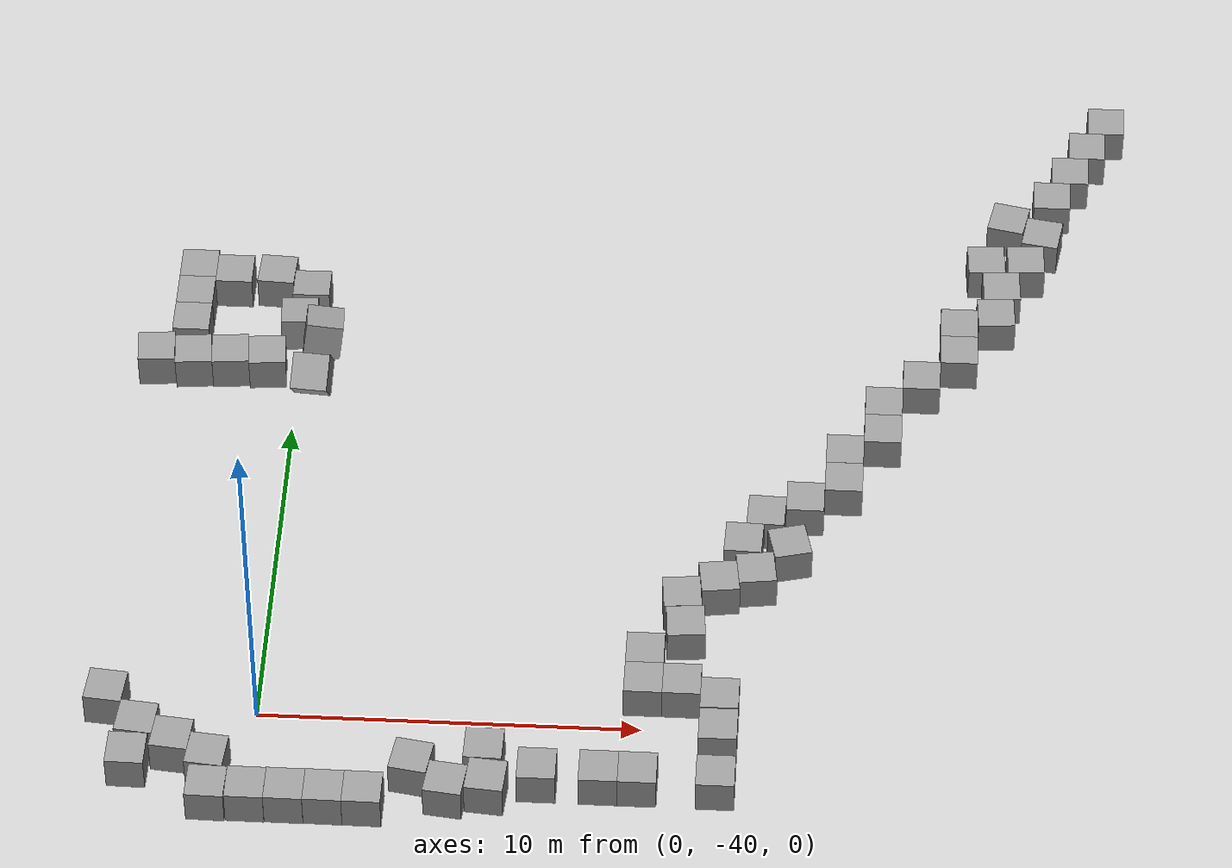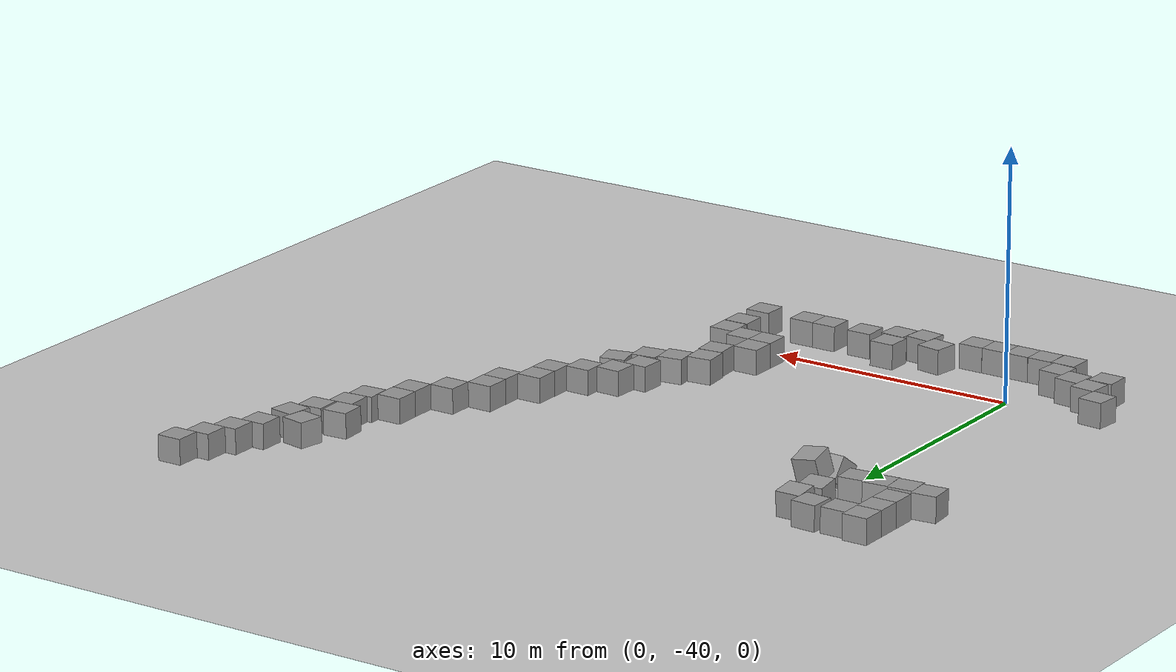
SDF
<sdf version="1.7">
 <world name="default">
  <model name="ground_plane">
   <static>1</static>
   <link name="link">
    <collision name="collision">
     <geometry><plane><normal>0 0 1</normal><size>100 100</size></plane></geometry>
     <surface>
      <contact><collide_bitmask>65535</collide_bitmask></contact>
      <friction><ode><mu>100</mu><mu2>50</mu2></ode></friction>
     </surface>
    </collision>
    <visual name="visual">
     <cast_shadows>0</cast_shadows>
     <geometry><plane><normal>0 0 1</normal><size>100 100</size></plane></geometry>
     <material>
      <script><uri>file://media/materials/scripts/gazebo.material</uri><name>Gazebo/Grey</name></script>
     </material>
    </visual>
   </link>
  </model>
  <model name="unit_box_clone_72">
   <pose>21.4729 -19 0.5 -0 -0 -9e-06</pose>
   <link name="link">
    <inertial>
     <mass>1</mass>
     <inertia>
      <ixx>0.166667</ixx>
      <ixy>0</ixy>
      <ixz>0</ixz>
      <iyy>0.166667</iyy>
      <iyz>0</iyz>
      <izz>0.166667</izz>
     </inertia>
    </inertial>
    <collision name="collision"><geometry><box><size>1 1 1</size></box></geometry></collision>
    <visual name="visual">
     <geometry><box><size>1 1 1</size></box></geometry>
     <material>
      <script><name>Gazebo/Grey</name><uri>file://media/materials/scripts/gazebo.material</uri></script>
     </material>
    </visual>
   </link>
  </model>
  <model name="unit_box_clone_73">
   <pose>21 -20 0.5 0 -0 1e-05</pose>
   <link name="link">
    <inertial>
     <mass>1</mass>
     <inertia>
      <ixx>0.166667</ixx>
      <ixy>0</ixy>
      <ixz>0</ixz>
      <iyy>0.166667</iyy>
      <iyz>0</iyz>
      <izz>0.166667</izz>
     </inertia>
    </inertial>
    <collision name="collision"><geometry><box><size>1 1 1</size></box></geometry></collision>
    <visual name="visual">
     <geometry><box><size>1 1 1</size></box></geometry>
     <material>
      <script><name>Gazebo/Grey</name><uri>file://media/materials/scripts/gazebo.material</uri></script>
     </material>
    </visual>
   </link>
  </model>
  <model name="unit_box_clone_74">
   <pose>22 -18 0.5 0 -0 -1e-06</pose>
   <link name="link">
    <inertial>
     <mass>1</mass>
     <inertia>
      <ixx>0.166667</ixx>
      <ixy>0</ixy>
      <ixz>0</ixz>
      <iyy>0.166667</iyy>
      <iyz>0</iyz>
      <izz>0.166667</izz>
     </inertia>
    </inertial>
    <collision name="collision"><geometry><box><size>1 1 1</size></box></geometry></collision>
    <visual name="visual">
     <geometry><box><size>1 1 1</size></box></geometry>
     <material>
      <script><name>Gazebo/Grey</name><uri>file://media/materials/scripts/gazebo.material</uri></script>
     </material>
    </visual>
   </link>
  </model>
  <model name="unit_box_clone_75">
   <pose>19.2987 -21.9461 0.5 0 0 -0.202812</pose>
   <link name="link">
    <inertial>
     <mass>1</mass>
     <inertia>
      <ixx>0.166667</ixx>
      <ixy>0</ixy>
      <ixz>0</ixz>
      <iyy>0.166667</iyy>
      <iyz>0</iyz>
      <izz>0.166667</izz>
     </inertia>
    </inertial>
    <collision name="collision"><geometry><box><size>1 1 1</size></box></geometry></collision>
    <visual name="visual">
     <geometry><box><size>1 1 1</size></box></geometry>
     <material>
      <script><name>Gazebo/Grey</name><uri>file://media/materials/scripts/gazebo.material</uri></script>
     </material>
    </visual>
   </link>
  </model>
  <model name="unit_box_clone_76">
   <pose>20.4952 -21 0.5 0 -0 2.5e-05</pose>
   <link name="link">
    <inertial>
     <mass>1</mass>
     <inertia>
      <ixx>0.166667</ixx>
      <ixy>0</ixy>
      <ixz>0</ixz>
      <iyy>0.166667</iyy>
      <iyz>0</iyz>
      <izz>0.166667</izz>
     </inertia>
    </inertial>
    <collision name="collision"><geometry><box><size>1 1 1</size></box></geometry></collision>
    <visual name="visual">
     <geometry><box><size>1 1 1</size></box></geometry>
     <material>
      <script><name>Gazebo/Grey</name><uri>file://media/materials/scripts/gazebo.material</uri></script>
     </material>
    </visual>
   </link>
  </model>
  <model name="unit_box_clone_77">
   <pose>20.2343 -22.4684 0.499995 0 -1e-05 -0.160719</pose>
   <link name="link">
    <inertial>
     <mass>1</mass>
     <inertia>
      <ixx>0.166667</ixx>
      <ixy>0</ixy>
      <ixz>0</ixz>
      <iyy>0.166667</iyy>
      <iyz>0</iyz>
      <izz>0.166667</izz>
     </inertia>
    </inertial>
    <collision name="collision"><geometry><box><size>1 1 1</size></box></geometry></collision>
    <visual name="visual">
     <geometry><box><size>1 1 1</size></box></geometry>
     <material>
      <script><name>Gazebo/Grey</name><uri>file://media/materials/scripts/gazebo.material</uri></script>
     </material>
    </visual>
   </link>
  </model>
  <model name="unit_box_clone_78">
   <pose>19.7832 -23.5026 0.499995 0 1e-05 0.048794</pose>
   <link name="link">
    <inertial>
     <mass>1</mass>
     <inertia>
      <ixx>0.166667</ixx>
      <ixy>0</ixy>
      <ixz>0</ixz>
      <iyy>0.166667</iyy>
      <iyz>0</iyz>
      <izz>0.166667</izz>
     </inertia>
    </inertial>
    <collision name="collision"><geometry><box><size>1 1 1</size></box></geometry></collision>
    <visual name="visual">
     <geometry><box><size>1 1 1</size></box></geometry>
     <material>
      <script><name>Gazebo/Grey</name><uri>file://media/materials/scripts/gazebo.material</uri></script>
     </material>
    </visual>
   </link>
  </model>
  <model name="unit_box_clone_79">
   <pose>18.6934 -23.5639 0.5 0 -0 0.058094</pose>
   <link name="link">
    <inertial>
     <mass>1</mass>
     <inertia>
      <ixx>0.166667</ixx>
      <ixy>0</ixy>
      <ixz>0</ixz>
      <iyy>0.166667</iyy>
      <iyz>0</iyz>
      <izz>0.166667</izz>
     </inertia>
    </inertial>
    <collision name="collision"><geometry><box><size>1 1 1</size></box></geometry></collision>
    <visual name="visual">
     <geometry><box><size>1 1 1</size></box></geometry>
     <material>
      <script><name>Gazebo/Grey</name><uri>file://media/materials/scripts/gazebo.material</uri></script>
     </material>
    </visual>
   </link>
  </model>
  <model name="unit_box_clone_80">
   <pose>19.1256 -24.5424 0.499995 0 1e-05 0.060179</pose>
   <link name="link">
    <inertial>
     <mass>1</mass>
     <inertia>
      <ixx>0.166667</ixx>
      <ixy>0</ixy>
      <ixz>0</ixz>
      <iyy>0.166667</iyy>
      <iyz>0</iyz>
      <izz>0.166667</izz>
     </inertia>
    </inertial>
    <collision name="collision"><geometry><box><size>1 1 1</size></box></geometry></collision>
    <visual name="visual">
     <geometry><box><size>1 1 1</size></box></geometry>
     <material>
      <script><name>Gazebo/Grey</name><uri>file://media/materials/scripts/gazebo.material</uri></script>
     </material>
    </visual>
   </link>
  </model>
  <model name="unit_box_clone_81">
   <pose>17.9863 -26.003 0.5 0 -0 0.004914</pose>
   <link name="link">
    <inertial>
     <mass>1</mass>
     <inertia>
      <ixx>0.166667</ixx>
      <ixy>0</ixy>
      <ixz>0</ixz>
      <iyy>0.166667</iyy>
      <iyz>0</iyz>
      <izz>0.166667</izz>
     </inertia>
    </inertial>
    <collision name="collision"><geometry><box><size>1 1 1</size></box></geometry></collision>
    <visual name="visual">
     <geometry><box><size>1 1 1</size></box></geometry>
     <material>
      <script><name>Gazebo/Grey</name><uri>file://media/materials/scripts/gazebo.material</uri></script>
     </material>
    </visual>
   </link>
  </model>
  <model name="unit_box_clone_82">
   <pose>18 -27.0032 0.5 0 -0 0.004405</pose>
   <link name="link">
    <inertial>
     <mass>1</mass>
     <inertia>
      <ixx>0.166667</ixx>
      <ixy>0</ixy>
      <ixz>0</ixz>
      <iyy>0.166667</iyy>
      <iyz>0</iyz>
      <izz>0.166667</izz>
     </inertia>
    </inertial>
    <collision name="collision"><geometry><box><size>1 1 1</size></box></geometry></collision>
    <visual name="visual">
     <geometry><box><size>1 1 1</size></box></geometry>
     <material>
      <script><name>Gazebo/Grey</name><uri>file://media/materials/scripts/gazebo.material</uri></script>
     </material>
    </visual>
   </link>
  </model>
  <model name="unit_box_clone_83">
   <pose>17 -28 0.5 0 -0 -3e-06</pose>
   <link name="link">
    <inertial>
     <mass>1</mass>
     <inertia>
      <ixx>0.166667</ixx>
      <ixy>0</ixy>
      <ixz>0</ixz>
      <iyy>0.166667</iyy>
      <iyz>0</iyz>
      <izz>0.166667</izz>
     </inertia>
    </inertial>
    <collision name="collision"><geometry><box><size>1 1 1</size></box></geometry></collision>
    <visual name="visual">
     <geometry><box><size>1 1 1</size></box></geometry>
     <material>
      <script><name>Gazebo/Grey</name><uri>file://media/materials/scripts/gazebo.material</uri></script>
     </material>
    </visual>
   </link>
  </model>
  <model name="unit_box_clone_84">
   <pose>18.9879 -25.5529 0.499995 -1e-05 -0 0.059931</pose>
   <link name="link">
    <inertial>
     <mass>1</mass>
     <inertia>
      <ixx>0.166667</ixx>
      <ixy>0</ixy>
      <ixz>0</ixz>
      <iyy>0.166667</iyy>
      <iyz>0</iyz>
      <izz>0.166667</izz>
     </inertia>
    </inertial>
    <collision name="collision"><geometry><box><size>1 1 1</size></box></geometry></collision>
    <visual name="visual">
     <geometry><box><size>1 1 1</size></box></geometry>
     <material>
      <script><name>Gazebo/Grey</name><uri>file://media/materials/scripts/gazebo.material</uri></script>
     </material>
    </visual>
   </link>
  </model>
  <model name="unit_box_clone_85">
   <pose>16 -29 0.5 0 -0 0</pose>
   <link name="link">
    <inertial>
     <mass>1</mass>
     <inertia>
      <ixx>0.166667</ixx>
      <ixy>0</ixy>
      <ixz>0</ixz>
      <iyy>0.166667</iyy>
      <iyz>0</iyz>
      <izz>0.166667</izz>
     </inertia>
    </inertial>
    <collision name="collision"><geometry><box><size>1 1 1</size></box></geometry></collision>
    <visual name="visual">
     <geometry><box><size>1 1 1</size></box></geometry>
     <material>
      <script><name>Gazebo/Grey</name><uri>file://media/materials/scripts/gazebo.material</uri></script>
     </material>
    </visual>
   </link>
  </model>
  <model name="unit_box_clone_86">
   <pose>16 -30 0.5 0 0 -2e-06</pose>
   <link name="link">
    <inertial>
     <mass>1</mass>
     <inertia>
      <ixx>0.166667</ixx>
      <ixy>0</ixy>
      <ixz>0</ixz>
      <iyy>0.166667</iyy>
      <iyz>0</iyz>
      <izz>0.166667</izz>
     </inertia>
    </inertial>
    <collision name="collision"><geometry><box><size>1 1 1</size></box></geometry></collision>
    <visual name="visual">
     <geometry><box><size>1 1 1</size></box></geometry>
     <material>
      <script><name>Gazebo/Grey</name><uri>file://media/materials/scripts/gazebo.material</uri></script>
     </material>
    </visual>
   </link>
  </model>
  <model name="unit_box_clone_87">
   <pose>14.9996 -31.7918 0.5 0 -0 0.000725</pose>
   <link name="link">
    <inertial>
     <mass>1</mass>
     <inertia>
      <ixx>0.166667</ixx>
      <ixy>0</ixy>
      <ixz>0</ixz>
      <iyy>0.166667</iyy>
      <iyz>0</iyz>
      <izz>0.166667</izz>
     </inertia>
    </inertial>
    <collision name="collision"><geometry><box><size>1 1 1</size></box></geometry></collision>
    <visual name="visual">
     <geometry><box><size>1 1 1</size></box></geometry>
     <material>
      <script><name>Gazebo/Grey</name><uri>file://media/materials/scripts/gazebo.material</uri></script>
     </material>
    </visual>
   </link>
  </model>
  <model name="unit_box_clone_88">
   <pose>13.9969 -32.5442 0.5 0 0 -0.004315</pose>
   <link name="link">
    <inertial>
     <mass>1</mass>
     <inertia>
      <ixx>0.166667</ixx>
      <ixy>0</ixy>
      <ixz>0</ixz>
      <iyy>0.166667</iyy>
      <iyz>0</iyz>
      <izz>0.166667</izz>
     </inertia>
    </inertial>
    <collision name="collision"><geometry><box><size>1 1 1</size></box></geometry></collision>
    <visual name="visual">
     <geometry><box><size>1 1 1</size></box></geometry>
     <material>
      <script><name>Gazebo/Grey</name><uri>file://media/materials/scripts/gazebo.material</uri></script>
     </material>
    </visual>
   </link>
  </model>
  <model name="unit_box_clone_89">
   <pose>15 -30.7915 0.5 0 -0 0.000207</pose>
   <link name="link">
    <inertial>
     <mass>1</mass>
     <inertia>
      <ixx>0.166667</ixx>
      <ixy>0</ixy>
      <ixz>0</ixz>
      <iyy>0.166667</iyy>
      <iyz>0</iyz>
      <izz>0.166667</izz>
     </inertia>
    </inertial>
    <collision name="collision"><geometry><box><size>1 1 1</size></box></geometry></collision>
    <visual name="visual">
     <geometry><box><size>1 1 1</size></box></geometry>
     <material>
      <script><name>Gazebo/Grey</name><uri>file://media/materials/scripts/gazebo.material</uri></script>
     </material>
    </visual>
   </link>
  </model>
  <model name="unit_box_clone_90">
   <pose>12.7797 -35.104 0.5 0 -0 0.128414</pose>
   <link name="link">
    <inertial>
     <mass>1</mass>
     <inertia>
      <ixx>0.166667</ixx>
      <ixy>0</ixy>
      <ixz>0</ixz>
      <iyy>0.166667</iyy>
      <iyz>0</iyz>
      <izz>0.166667</izz>
     </inertia>
    </inertial>
    <collision name="collision"><geometry><box><size>1 1 1</size></box></geometry></collision>
    <visual name="visual">
     <geometry><box><size>1 1 1</size></box></geometry>
     <material>
      <script><name>Gazebo/Grey</name><uri>file://media/materials/scripts/gazebo.material</uri></script>
     </material>
    </visual>
   </link>
  </model>
  <model name="unit_box_clone_91">
   <pose>12.41 -34.0658 0.5 0 0 -0.03862</pose>
   <link name="link">
    <inertial>
     <mass>1</mass>
     <inertia>
      <ixx>0.166667</ixx>
      <ixy>0</ixy>
      <ixz>0</ixz>
      <iyy>0.166667</iyy>
      <iyz>0</iyz>
      <izz>0.166667</izz>
     </inertia>
    </inertial>
    <collision name="collision"><geometry><box><size>1 1 1</size></box></geometry></collision>
    <visual name="visual">
     <geometry><box><size>1 1 1</size></box></geometry>
     <material>
      <script><name>Gazebo/Grey</name><uri>file://media/materials/scripts/gazebo.material</uri></script>
     </material>
    </visual>
   </link>
  </model>
  <model name="unit_box_clone_92">
   <pose>13.6292 -34.1431 0.5 0 -0 0.237766</pose>
   <link name="link">
    <inertial>
     <mass>1</mass>
     <inertia>
      <ixx>0.166667</ixx>
      <ixy>0</ixy>
      <ixz>0</ixz>
      <iyy>0.166667</iyy>
      <iyz>0</iyz>
      <izz>0.166667</izz>
     </inertia>
    </inertial>
    <collision name="collision"><geometry><box><size>1 1 1</size></box></geometry></collision>
    <visual name="visual">
     <geometry><box><size>1 1 1</size></box></geometry>
     <material>
      <script><name>Gazebo/Grey</name><uri>file://media/materials/scripts/gazebo.material</uri></script>
     </material>
    </visual>
   </link>
  </model>
  <model name="unit_box_clone_93">
   <pose>12.9775 -33.0869 0.5 0 0 -0.03902</pose>
   <link name="link">
    <inertial>
     <mass>1</mass>
     <inertia>
      <ixx>0.166667</ixx>
      <ixy>0</ixy>
      <ixz>0</ixz>
      <iyy>0.166667</iyy>
      <iyz>0</iyz>
      <izz>0.166667</izz>
     </inertia>
    </inertial>
    <collision name="collision"><geometry><box><size>1 1 1</size></box></geometry></collision>
    <visual name="visual">
     <geometry><box><size>1 1 1</size></box></geometry>
     <material>
      <script><name>Gazebo/Grey</name><uri>file://media/materials/scripts/gazebo.material</uri></script>
     </material>
    </visual>
   </link>
  </model>
  <model name="unit_box_clone_94">
   <pose>11.0055 -37.0322 0.5 0 -0 0.07946</pose>
   <link name="link">
    <inertial>
     <mass>1</mass>
     <inertia>
      <ixx>0.166667</ixx>
      <ixy>0</ixy>
      <ixz>0</ixz>
      <iyy>0.166667</iyy>
      <iyz>0</iyz>
      <izz>0.166667</izz>
     </inertia>
    </inertial>
    <collision name="collision"><geometry><box><size>1 1 1</size></box></geometry></collision>
    <visual name="visual">
     <geometry><box><size>1 1 1</size></box></geometry>
     <material>
      <script><name>Gazebo/Grey</name><uri>file://media/materials/scripts/gazebo.material</uri></script>
     </material>
    </visual>
   </link>
  </model>
  <model name="unit_box_clone_95">
   <pose>11.8162 -35.451 0.499995 -1e-05 -0 0.128412</pose>
   <link name="link">
    <inertial>
     <mass>1</mass>
     <inertia>
      <ixx>0.166667</ixx>
      <ixy>0</ixy>
      <ixz>0</ixz>
      <iyy>0.166667</iyy>
      <iyz>0</iyz>
      <izz>0.166667</izz>
     </inertia>
    </inertial>
    <collision name="collision"><geometry><box><size>1 1 1</size></box></geometry></collision>
    <visual name="visual">
     <geometry><box><size>1 1 1</size></box></geometry>
     <material>
      <script><name>Gazebo/Grey</name><uri>file://media/materials/scripts/gazebo.material</uri></script>
     </material>
    </visual>
   </link>
  </model>
  <model name="unit_box_clone_96">
   <pose>10.8645 -36.0344 0.5 0 -0 0.092572</pose>
   <link name="link">
    <inertial>
     <mass>1</mass>
     <inertia>
      <ixx>0.166667</ixx>
      <ixy>0</ixy>
      <ixz>0</ixz>
      <iyy>0.166667</iyy>
      <iyz>0</iyz>
      <izz>0.166667</izz>
     </inertia>
    </inertial>
    <collision name="collision"><geometry><box><size>1 1 1</size></box></geometry></collision>
    <visual name="visual">
     <geometry><box><size>1 1 1</size></box></geometry>
     <material>
      <script><name>Gazebo/Grey</name><uri>file://media/materials/scripts/gazebo.material</uri></script>
     </material>
    </visual>
   </link>
  </model>
  <model name="unit_box_clone_97">
   <pose>10 -38 0.5 0 -0 2e-06</pose>
   <link name="link">
    <inertial>
     <mass>1</mass>
     <inertia>
      <ixx>0.166667</ixx>
      <ixy>0</ixy>
      <ixz>0</ixz>
      <iyy>0.166667</iyy>
      <iyz>0</iyz>
      <izz>0.166667</izz>
     </inertia>
    </inertial>
    <collision name="collision"><geometry><box><size>1 1 1</size></box></geometry></collision>
    <visual name="visual">
     <geometry><box><size>1 1 1</size></box></geometry>
     <material>
      <script><name>Gazebo/Grey</name><uri>file://media/materials/scripts/gazebo.material</uri></script>
     </material>
    </visual>
   </link>
  </model>
  <model name="unit_box_clone_98">
   <pose>10 -39 0.499995 0 1e-05 -5e-06</pose>
   <link name="link">
    <inertial>
     <mass>1</mass>
     <inertia>
      <ixx>0.166667</ixx>
      <ixy>0</ixy>
      <ixz>0</ixz>
      <iyy>0.166667</iyy>
      <iyz>0</iyz>
      <izz>0.166667</izz>
     </inertia>
    </inertial>
    <collision name="collision"><geometry><box><size>1 1 1</size></box></geometry></collision>
    <visual name="visual">
     <geometry><box><size>1 1 1</size></box></geometry>
     <material>
      <script><name>Gazebo/Grey</name><uri>file://media/materials/scripts/gazebo.material</uri></script>
     </material>
    </visual>
   </link>
  </model>
  <model name="unit_box_clone_99">
   <pose>11 -39 0.499995 0 1e-05 -1.1e-05</pose>
   <link name="link">
    <inertial>
     <mass>1</mass>
     <inertia>
      <ixx>0.166667</ixx>
      <ixy>0</ixy>
      <ixz>0</ixz>
      <iyy>0.166667</iyy>
      <iyz>0</iyz>
      <izz>0.166667</izz>
     </inertia>
    </inertial>
    <collision name="collision"><geometry><box><size>1 1 1</size></box></geometry></collision>
    <visual name="visual">
     <geometry><box><size>1 1 1</size></box></geometry>
     <material>
      <script><name>Gazebo/Grey</name><uri>file://media/materials/scripts/gazebo.material</uri></script>
     </material>
    </visual>
   </link>
  </model>
  <model name="unit_box_clone_100">
   <pose>12 -39.4267 0.499995 0 -1e-05 -3e-05</pose>
   <link name="link">
    <inertial>
     <mass>1</mass>
     <inertia>
      <ixx>0.166667</ixx>
      <ixy>0</ixy>
      <ixz>0</ixz>
      <iyy>0.166667</iyy>
      <iyz>0</iyz>
      <izz>0.166667</izz>
     </inertia>
    </inertial>
    <collision name="collision"><geometry><box><size>1 1 1</size></box></geometry></collision>
    <visual name="visual">
     <geometry><box><size>1 1 1</size></box></geometry>
     <material>
      <script><name>Gazebo/Grey</name><uri>file://media/materials/scripts/gazebo.material</uri></script>
     </material>
    </visual>
   </link>
  </model>
  <model name="unit_box_clone_101">
   <pose>12 -40.455 0.5 -0 -0 -0</pose>
   <link name="link">
    <inertial>
     <mass>1</mass>
     <inertia>
      <ixx>0.166667</ixx>
      <ixy>0</ixy>
      <ixz>0</ixz>
      <iyy>0.166667</iyy>
      <iyz>0</iyz>
      <izz>0.166667</izz>
     </inertia>
    </inertial>
    <collision name="collision"><geometry><box><size>1 1 1</size></box></geometry></collision>
    <visual name="visual">
     <geometry><box><size>1 1 1</size></box></geometry>
     <material>
      <script><name>Gazebo/Grey</name><uri>file://media/materials/scripts/gazebo.material</uri></script>
     </material>
    </visual>
   </link>
  </model>
  <model name="unit_box_clone_102">
   <pose>12 -42 0.5 0 -0 0</pose>
   <link name="link">
    <inertial>
     <mass>1</mass>
     <inertia>
      <ixx>0.166667</ixx>
      <ixy>0</ixy>
      <ixz>0</ixz>
      <iyy>0.166667</iyy>
      <iyz>0</iyz>
      <izz>0.166667</izz>
     </inertia>
    </inertial>
    <collision name="collision"><geometry><box><size>1 1 1</size></box></geometry></collision>
    <visual name="visual">
     <geometry><box><size>1 1 1</size></box></geometry>
     <material>
      <script><name>Gazebo/Grey</name><uri>file://media/materials/scripts/gazebo.material</uri></script>
     </material>
    </visual>
   </link>
  </model>
  <model name="unit_box_clone_103">
   <pose>9.99998 -42 0.5 0 0 -2.1e-05</pose>
   <link name="link">
    <inertial>
     <mass>1</mass>
     <inertia>
      <ixx>0.166667</ixx>
      <ixy>0</ixy>
      <ixz>0</ixz>
      <iyy>0.166667</iyy>
      <iyz>0</iyz>
      <izz>0.166667</izz>
     </inertia>
    </inertial>
    <collision name="collision"><geometry><box><size>1 1 1</size></box></geometry></collision>
    <visual name="visual">
     <geometry><box><size>1 1 1</size></box></geometry>
     <material>
      <script><name>Gazebo/Grey</name><uri>file://media/materials/scripts/gazebo.material</uri></script>
     </material>
    </visual>
   </link>
  </model>
  <model name="unit_box_clone_104">
   <pose>8.99998 -42 0.5 -0 -0 -2.1e-05</pose>
   <link name="link">
    <inertial>
     <mass>1</mass>
     <inertia>
      <ixx>0.166667</ixx>
      <ixy>0</ixy>
      <ixz>0</ixz>
      <iyy>0.166667</iyy>
      <iyz>0</iyz>
      <izz>0.166667</izz>
     </inertia>
    </inertial>
    <collision name="collision"><geometry><box><size>1 1 1</size></box></geometry></collision>
    <visual name="visual">
     <geometry><box><size>1 1 1</size></box></geometry>
     <material>
      <script><name>Gazebo/Grey</name><uri>file://media/materials/scripts/gazebo.material</uri></script>
     </material>
    </visual>
   </link>
  </model>
  <model name="unit_box_clone_105">
   <pose>7.41421 -42 0.5 0 -0 0</pose>
   <link name="link">
    <inertial>
     <mass>1</mass>
     <inertia>
      <ixx>0.166667</ixx>
      <ixy>0</ixy>
      <ixz>0</ixz>
      <iyy>0.166667</iyy>
      <iyz>0</iyz>
      <izz>0.166667</izz>
     </inertia>
    </inertial>
    <collision name="collision"><geometry><box><size>1 1 1</size></box></geometry></collision>
    <visual name="visual">
     <geometry><box><size>1 1 1</size></box></geometry>
     <material>
      <script><name>Gazebo/Grey</name><uri>file://media/materials/scripts/gazebo.material</uri></script>
     </material>
    </visual>
   </link>
  </model>
  <model name="unit_box_clone_106">
   <pose>6.13993 -42.4397 0.499997 -6e-06 1e-06 -0.085546</pose>
   <link name="link">
    <inertial>
     <mass>1</mass>
     <inertia>
      <ixx>0.166667</ixx>
      <ixy>0</ixy>
      <ixz>0</ixz>
      <iyy>0.166667</iyy>
      <iyz>0</iyz>
      <izz>0.166667</izz>
     </inertia>
    </inertial>
    <collision name="collision"><geometry><box><size>1 1 1</size></box></geometry></collision>
    <visual name="visual">
     <geometry><box><size>1 1 1</size></box></geometry>
     <material>
      <script><name>Gazebo/Grey</name><uri>file://media/materials/scripts/gazebo.material</uri></script>
     </material>
    </visual>
   </link>
  </model>
  <model name="unit_box_clone_107">
   <pose>5.10625 -42.5993 0.5 -0 -0 -0.118625</pose>
   <link name="link">
    <inertial>
     <mass>1</mass>
     <inertia>
      <ixx>0.166667</ixx>
      <ixy>0</ixy>
      <ixz>0</ixz>
      <iyy>0.166667</iyy>
      <iyz>0</iyz>
      <izz>0.166667</izz>
     </inertia>
    </inertial>
    <collision name="collision"><geometry><box><size>1 1 1</size></box></geometry></collision>
    <visual name="visual">
     <geometry><box><size>1 1 1</size></box></geometry>
     <material>
      <script><name>Gazebo/Grey</name><uri>file://media/materials/scripts/gazebo.material</uri></script>
     </material>
    </visual>
   </link>
  </model>
  <model name="unit_box_clone_108">
   <pose>6.01683 -41.4029 0.5 0 0 -0.019975</pose>
   <link name="link">
    <inertial>
     <mass>1</mass>
     <inertia>
      <ixx>0.166667</ixx>
      <ixy>0</ixy>
      <ixz>0</ixz>
      <iyy>0.166667</iyy>
      <iyz>0</iyz>
      <izz>0.166667</izz>
     </inertia>
    </inertial>
    <collision name="collision"><geometry><box><size>1 1 1</size></box></geometry></collision>
    <visual name="visual">
     <geometry><box><size>1 1 1</size></box></geometry>
     <material>
      <script><name>Gazebo/Grey</name><uri>file://media/materials/scripts/gazebo.material</uri></script>
     </material>
    </visual>
   </link>
  </model>
  <model name="unit_box_clone_109">
   <pose>4.18332 -41.9137 0.5 0 -0 -0.157843</pose>
   <link name="link">
    <inertial>
     <mass>1</mass>
     <inertia>
      <ixx>0.166667</ixx>
      <ixy>0</ixy>
      <ixz>0</ixz>
      <iyy>0.166667</iyy>
      <iyz>0</iyz>
      <izz>0.166667</izz>
     </inertia>
    </inertial>
    <collision name="collision"><geometry><box><size>1 1 1</size></box></geometry></collision>
    <visual name="visual">
     <geometry><box><size>1 1 1</size></box></geometry>
     <material>
      <script><name>Gazebo/Grey</name><uri>file://media/materials/scripts/gazebo.material</uri></script>
     </material>
    </visual>
   </link>
  </model>
  <model name="unit_box_clone_110">
   <pose>3.01786 -43.0033 0.5 -0 -0 -0.008401</pose>
   <link name="link">
    <inertial>
     <mass>1</mass>
     <inertia>
      <ixx>0.166667</ixx>
      <ixy>0</ixy>
      <ixz>0</ixz>
      <iyy>0.166667</iyy>
      <iyz>0</iyz>
      <izz>0.166667</izz>
     </inertia>
    </inertial>
    <collision name="collision"><geometry><box><size>1 1 1</size></box></geometry></collision>
    <visual name="visual">
     <geometry><box><size>1 1 1</size></box></geometry>
     <material>
      <script><name>Gazebo/Grey</name><uri>file://media/materials/scripts/gazebo.material</uri></script>
     </material>
    </visual>
   </link>
  </model>
  <model name="unit_box_clone_111">
   <pose>1.01771 -43.0047 0.5 0 0 -0.008417</pose>
   <link name="link">
    <inertial>
     <mass>1</mass>
     <inertia>
      <ixx>0.166667</ixx>
      <ixy>0</ixy>
      <ixz>0</ixz>
      <iyy>0.166667</iyy>
      <iyz>0</iyz>
      <izz>0.166667</izz>
     </inertia>
    </inertial>
    <collision name="collision"><geometry><box><size>1 1 1</size></box></geometry></collision>
    <visual name="visual">
     <geometry><box><size>1 1 1</size></box></geometry>
     <material>
      <script><name>Gazebo/Grey</name><uri>file://media/materials/scripts/gazebo.material</uri></script>
     </material>
    </visual>
   </link>
  </model>
  <model name="unit_box_clone_112">
   <pose>0.017551 -43.0099 0.5 -0 -0 -0.008512</pose>
   <link name="link">
    <inertial>
     <mass>1</mass>
     <inertia>
      <ixx>0.166667</ixx>
      <ixy>0</ixy>
      <ixz>0</ixz>
      <iyy>0.166667</iyy>
      <iyz>0</iyz>
      <izz>0.166667</izz>
     </inertia>
    </inertial>
    <collision name="collision"><geometry><box><size>1 1 1</size></box></geometry></collision>
    <visual name="visual">
     <geometry><box><size>1 1 1</size></box></geometry>
     <material>
      <script><name>Gazebo/Grey</name><uri>file://media/materials/scripts/gazebo.material</uri></script>
     </material>
    </visual>
   </link>
  </model>
  <model name="unit_box_clone_113">
   <pose>2.01784 -43 0.5 -0 -0 -0.008394</pose>
   <link name="link">
    <inertial>
     <mass>1</mass>
     <inertia>
      <ixx>0.166667</ixx>
      <ixy>0</ixy>
      <ixz>0</ixz>
      <iyy>0.166667</iyy>
      <iyz>0</iyz>
      <izz>0.166667</izz>
     </inertia>
    </inertial>
    <collision name="collision"><geometry><box><size>1 1 1</size></box></geometry></collision>
    <visual name="visual">
     <geometry><box><size>1 1 1</size></box></geometry>
     <material>
      <script><name>Gazebo/Grey</name><uri>file://media/materials/scripts/gazebo.material</uri></script>
     </material>
    </visual>
   </link>
  </model>
  <model name="unit_box_clone_114">
   <pose>-1.07485 -41.9853 0.5 -0 -0 -0.093175</pose>
   <link name="link">
    <inertial>
     <mass>1</mass>
     <inertia>
      <ixx>0.166667</ixx>
      <ixy>0</ixy>
      <ixz>0</ixz>
      <iyy>0.166667</iyy>
      <iyz>0</iyz>
      <izz>0.166667</izz>
     </inertia>
    </inertial>
    <collision name="collision"><geometry><box><size>1 1 1</size></box></geometry></collision>
    <visual name="visual">
     <geometry><box><size>1 1 1</size></box></geometry>
     <material>
      <script><name>Gazebo/Grey</name><uri>file://media/materials/scripts/gazebo.material</uri></script>
     </material>
    </visual>
   </link>
  </model>
  <model name="unit_box_clone_115">
   <pose>-0.990491 -43.0209 0.5 0 -0 -0.024356</pose>
   <link name="link">
    <inertial>
     <mass>1</mass>
     <inertia>
      <ixx>0.166667</ixx>
      <ixy>0</ixy>
      <ixz>0</ixz>
      <iyy>0.166667</iyy>
      <iyz>0</iyz>
      <izz>0.166667</izz>
     </inertia>
    </inertial>
    <collision name="collision"><geometry><box><size>1 1 1</size></box></geometry></collision>
    <visual name="visual">
     <geometry><box><size>1 1 1</size></box></geometry>
     <material>
      <script><name>Gazebo/Grey</name><uri>file://media/materials/scripts/gazebo.material</uri></script>
     </material>
    </visual>
   </link>
  </model>
  <model name="unit_box_clone_116">
   <pose>-3.14403 -42.0421 0.5 0 0 -0.016699</pose>
   <link name="link">
    <inertial>
     <mass>1</mass>
     <inertia>
      <ixx>0.166667</ixx>
      <ixy>0</ixy>
      <ixz>0</ixz>
      <iyy>0.166667</iyy>
      <iyz>0</iyz>
      <izz>0.166667</izz>
     </inertia>
    </inertial>
    <collision name="collision"><geometry><box><size>1 1 1</size></box></geometry></collision>
    <visual name="visual">
     <geometry><box><size>1 1 1</size></box></geometry>
     <material>
      <script><name>Gazebo/Grey</name><uri>file://media/materials/scripts/gazebo.material</uri></script>
     </material>
    </visual>
   </link>
  </model>
  <model name="unit_box_clone_117">
   <pose>-2.99138 -41.0114 0.499996 -8e-06 -0 -0.099904</pose>
   <link name="link">
    <inertial>
     <mass>1</mass>
     <inertia>
      <ixx>0.166667</ixx>
      <ixy>0</ixy>
      <ixz>0</ixz>
      <iyy>0.166667</iyy>
      <iyz>0</iyz>
      <izz>0.166667</izz>
     </inertia>
    </inertial>
    <collision name="collision"><geometry><box><size>1 1 1</size></box></geometry></collision>
    <visual name="visual">
     <geometry><box><size>1 1 1</size></box></geometry>
     <material>
      <script><name>Gazebo/Grey</name><uri>file://media/materials/scripts/gazebo.material</uri></script>
     </material>
    </visual>
   </link>
  </model>
  <model name="unit_box_clone_118">
   <pose>-2.03402 -41.4894 0.5 0 0 -0.099494</pose>
   <link name="link">
    <inertial>
     <mass>1</mass>
     <inertia>
      <ixx>0.166667</ixx>
      <ixy>0</ixy>
      <ixz>0</ixz>
      <iyy>0.166667</iyy>
      <iyz>0</iyz>
      <izz>0.166667</izz>
     </inertia>
    </inertial>
    <collision name="collision"><geometry><box><size>1 1 1</size></box></geometry></collision>
    <visual name="visual">
     <geometry><box><size>1 1 1</size></box></geometry>
     <material>
      <script><name>Gazebo/Grey</name><uri>file://media/materials/scripts/gazebo.material</uri></script>
     </material>
    </visual>
   </link>
  </model>
  <model name="unit_box_clone_122">
   <pose>-3.89822 -39.9999 0.499995 1e-05 -0 -0.093491</pose>
   <link name="link">
    <inertial>
     <mass>1</mass>
     <inertia>
      <ixx>0.166667</ixx>
      <ixy>0</ixy>
      <ixz>0</ixz>
      <iyy>0.166667</iyy>
      <iyz>0</iyz>
      <izz>0.166667</izz>
     </inertia>
    </inertial>
    <collision name="collision"><geometry><box><size>1 1 1</size></box></geometry></collision>
    <visual name="visual">
     <geometry><box><size>1 1 1</size></box></geometry>
     <material>
      <script><name>Gazebo/Grey</name><uri>file://media/materials/scripts/gazebo.material</uri></script>
     </material>
    </visual>
   </link>
  </model>
  <model name="unit_box_clone_281">
   <pose>-0.820173 -24.9624 0.502457 2.8e-05 -0.004896 -0.049749</pose>
   <link name="link">
    <inertial>
     <mass>1</mass>
     <inertia>
      <ixx>0.166667</ixx>
      <ixy>0</ixy>
      <ixz>0</ixz>
      <iyy>0.166667</iyy>
      <iyz>0</iyz>
      <izz>0.166667</izz>
     </inertia>
    </inertial>
    <collision name="collision"><geometry><box><size>1 1 1</size></box></geometry></collision>
    <visual name="visual">
     <geometry><box><size>1 1 1</size></box></geometry>
     <material>
      <script><name>Gazebo/Grey</name><uri>file://media/materials/scripts/gazebo.material</uri></script>
     </material>
    </visual>
   </link>
  </model>
  <model name="unit_box_clone_282">
   <pose>-2 -25 0.5 -0 -1e-06 -3e-06</pose>
   <link name="link">
    <inertial>
     <mass>1</mass>
     <inertia>
      <ixx>0.166667</ixx>
      <ixy>0</ixy>
      <ixz>0</ixz>
      <iyy>0.166667</iyy>
      <iyz>0</iyz>
      <izz>0.166667</izz>
     </inertia>
    </inertial>
    <collision name="collision"><geometry><box><size>1 1 1</size></box></geometry></collision>
    <visual name="visual">
     <geometry><box><size>1 1 1</size></box></geometry>
     <material>
      <script><name>Gazebo/Grey</name><uri>file://media/materials/scripts/gazebo.material</uri></script>
     </material>
    </visual>
   </link>
  </model>
  <model name="unit_box_clone_283">
   <pose>-3 -24.8451 0.5 0 1e-06 -4e-06</pose>
   <link name="link">
    <inertial>
     <mass>1</mass>
     <inertia>
      <ixx>0.166667</ixx>
      <ixy>0</ixy>
      <ixz>0</ixz>
      <iyy>0.166667</iyy>
      <iyz>0</iyz>
      <izz>0.166667</izz>
     </inertia>
    </inertial>
    <collision name="collision"><geometry><box><size>1 1 1</size></box></geometry></collision>
    <visual name="visual">
     <geometry><box><size>1 1 1</size></box></geometry>
     <material>
      <script><name>Gazebo/Grey</name><uri>file://media/materials/scripts/gazebo.material</uri></script>
     </material>
    </visual>
   </link>
  </model>
  <model name="unit_box_clone_284">
   <pose>-3.00001 -25.8451 0.5 0 -0 0</pose>
   <link name="link">
    <inertial>
     <mass>1</mass>
     <inertia>
      <ixx>0.166667</ixx>
      <ixy>0</ixy>
      <ixz>0</ixz>
      <iyy>0.166667</iyy>
      <iyz>0</iyz>
      <izz>0.166667</izz>
     </inertia>
    </inertial>
    <collision name="collision"><geometry><box><size>1 1 1</size></box></geometry></collision>
    <visual name="visual">
     <geometry><box><size>1 1 1</size></box></geometry>
     <material>
      <script><name>Gazebo/Grey</name><uri>file://media/materials/scripts/gazebo.material</uri></script>
     </material>
    </visual>
   </link>
  </model>
  <model name="unit_box_clone_285">
   <pose>-3.00001 -26.8451 0.499995 -0 -1e-05 -4e-06</pose>
   <link name="link">
    <inertial>
     <mass>1</mass>
     <inertia>
      <ixx>0.166667</ixx>
      <ixy>0</ixy>
      <ixz>0</ixz>
      <iyy>0.166667</iyy>
      <iyz>0</iyz>
      <izz>0.166667</izz>
     </inertia>
    </inertial>
    <collision name="collision"><geometry><box><size>1 1 1</size></box></geometry></collision>
    <visual name="visual">
     <geometry><box><size>1 1 1</size></box></geometry>
     <material>
      <script><name>Gazebo/Grey</name><uri>file://media/materials/scripts/gazebo.material</uri></script>
     </material>
    </visual>
   </link>
  </model>
  <model name="unit_box_clone_286">
   <pose>-3.85933 -28.0102 0.499995 -1e-05 0 0.083365</pose>
   <link name="link">
    <inertial>
     <mass>1</mass>
     <inertia>
      <ixx>0.166667</ixx>
      <ixy>0</ixy>
      <ixz>0</ixz>
      <iyy>0.166667</iyy>
      <iyz>0</iyz>
      <izz>0.166667</izz>
     </inertia>
    </inertial>
    <collision name="collision"><geometry><box><size>1 1 1</size></box></geometry></collision>
    <visual name="visual">
     <geometry><box><size>1 1 1</size></box></geometry>
     <material>
      <script><name>Gazebo/Grey</name><uri>file://media/materials/scripts/gazebo.material</uri></script>
     </material>
    </visual>
   </link>
  </model>
  <model name="unit_box_clone_287">
   <pose>-2.84686 -28.0582 0.499995 -1e-05 -0 0.093124</pose>
   <link name="link">
    <inertial>
     <mass>1</mass>
     <inertia>
      <ixx>0.166667</ixx>
      <ixy>0</ixy>
      <ixz>0</ixz>
      <iyy>0.166667</iyy>
      <iyz>0</iyz>
      <izz>0.166667</izz>
     </inertia>
    </inertial>
    <collision name="collision"><geometry><box><size>1 1 1</size></box></geometry></collision>
    <visual name="visual">
     <geometry><box><size>1 1 1</size></box></geometry>
     <material>
      <script><name>Gazebo/Grey</name><uri>file://media/materials/scripts/gazebo.material</uri></script>
     </material>
    </visual>
   </link>
  </model>
  <model name="unit_box_clone_288">
   <pose>-1.84342 -27.9993 0.5 0 -0 0.09158</pose>
   <link name="link">
    <inertial>
     <mass>1</mass>
     <inertia>
      <ixx>0.166667</ixx>
      <ixy>0</ixy>
      <ixz>0</ixz>
      <iyy>0.166667</iyy>
      <iyz>0</iyz>
      <izz>0.166667</izz>
     </inertia>
    </inertial>
    <collision name="collision"><geometry><box><size>1 1 1</size></box></geometry></collision>
    <visual name="visual">
     <geometry><box><size>1 1 1</size></box></geometry>
     <material>
      <script><name>Gazebo/Grey</name><uri>file://media/materials/scripts/gazebo.material</uri></script>
     </material>
    </visual>
   </link>
  </model>
  <model name="unit_box_clone_289">
   <pose>-0.840329 -27.9872 0.499995 1e-05 -0 0.09158</pose>
   <link name="link">
    <inertial>
     <mass>1</mass>
     <inertia>
      <ixx>0.166667</ixx>
      <ixy>0</ixy>
      <ixz>0</ixz>
      <iyy>0.166667</iyy>
      <iyz>0</iyz>
      <izz>0.166667</izz>
     </inertia>
    </inertial>
    <collision name="collision"><geometry><box><size>1 1 1</size></box></geometry></collision>
    <visual name="visual">
     <geometry><box><size>1 1 1</size></box></geometry>
     <material>
      <script><name>Gazebo/Grey</name><uri>file://media/materials/scripts/gazebo.material</uri></script>
     </material>
    </visual>
   </link>
  </model>
  <model name="unit_box_clone_290">
   <pose>0.434464 -28.553 0.697911 0.623964 5e-06 -0.072666</pose>
   <link name="link">
    <inertial>
     <mass>1</mass>
     <inertia>
      <ixx>0.166667</ixx>
      <ixy>0</ixy>
      <ixz>0</ixz>
      <iyy>0.166667</iyy>
      <iyz>0</iyz>
      <izz>0.166667</izz>
     </inertia>
    </inertial>
    <collision name="collision"><geometry><box><size>1 1 1</size></box></geometry></collision>
    <visual name="visual">
     <geometry><box><size>1 1 1</size></box></geometry>
     <material>
      <script><name>Gazebo/Grey</name><uri>file://media/materials/scripts/gazebo.material</uri></script>
     </material>
    </visual>
   </link>
  </model>
  <model name="unit_box_clone_291">
   <pose>0.672689 -27.4488 1.20793 -0.215649 0.138139 0.027575</pose>
   <link name="link">
    <inertial>
     <mass>1</mass>
     <inertia>
      <ixx>0.166667</ixx>
      <ixy>0</ixy>
      <ixz>0</ixz>
      <iyy>0.166667</iyy>
      <iyz>0</iyz>
      <izz>0.166667</izz>
     </inertia>
    </inertial>
    <collision name="collision"><geometry><box><size>1 1 1</size></box></geometry></collision>
    <visual name="visual">
     <geometry><box><size>1 1 1</size></box></geometry>
     <material>
      <script><name>Gazebo/Grey</name><uri>file://media/materials/scripts/gazebo.material</uri></script>
     </material>
    </visual>
   </link>
  </model>
  <model name="unit_box_clone_292">
   <pose>-0.071491 -26.55 0.540686 -0.085092 -0 0.05699</pose>
   <link name="link">
    <inertial>
     <mass>1</mass>
     <inertia>
      <ixx>0.166667</ixx>
      <ixy>0</ixy>
      <ixz>0</ixz>
      <iyy>0.166667</iyy>
      <iyz>0</iyz>
      <izz>0.166667</izz>
     </inertia>
    </inertial>
    <collision name="collision"><geometry><box><size>1 1 1</size></box></geometry></collision>
    <visual name="visual">
     <geometry><box><size>1 1 1</size></box></geometry>
     <material>
      <script><name>Gazebo/Grey</name><uri>file://media/materials/scripts/gazebo.material</uri></script>
     </material>
    </visual>
   </link>
  </model>
  <model name="unit_box_clone_293">
   <pose>0.180735 -25.52 0.539879 -0.085804 -0.000137 0.00748</pose>
   <link name="link">
    <inertial>
     <mass>1</mass>
     <inertia>
      <ixx>0.166667</ixx>
      <ixy>0</ixy>
      <ixz>0</ixz>
      <iyy>0.166667</iyy>
      <iyz>0</iyz>
      <izz>0.166667</izz>
     </inertia>
    </inertial>
    <collision name="collision"><geometry><box><size>1 1 1</size></box></geometry></collision>
    <visual name="visual">
     <geometry><box><size>1 1 1</size></box></geometry>
     <material>
      <script><name>Gazebo/Grey</name><uri>file://media/materials/scripts/gazebo.material</uri></script>
     </material>
    </visual>
   </link>
  </model>
 </world>
</sdf>
